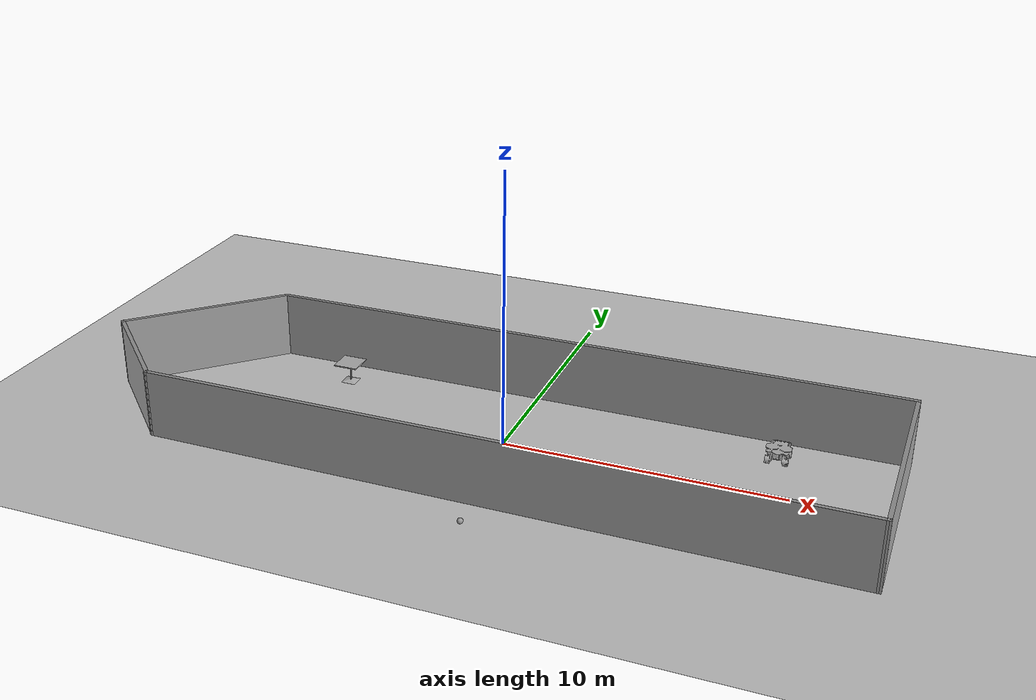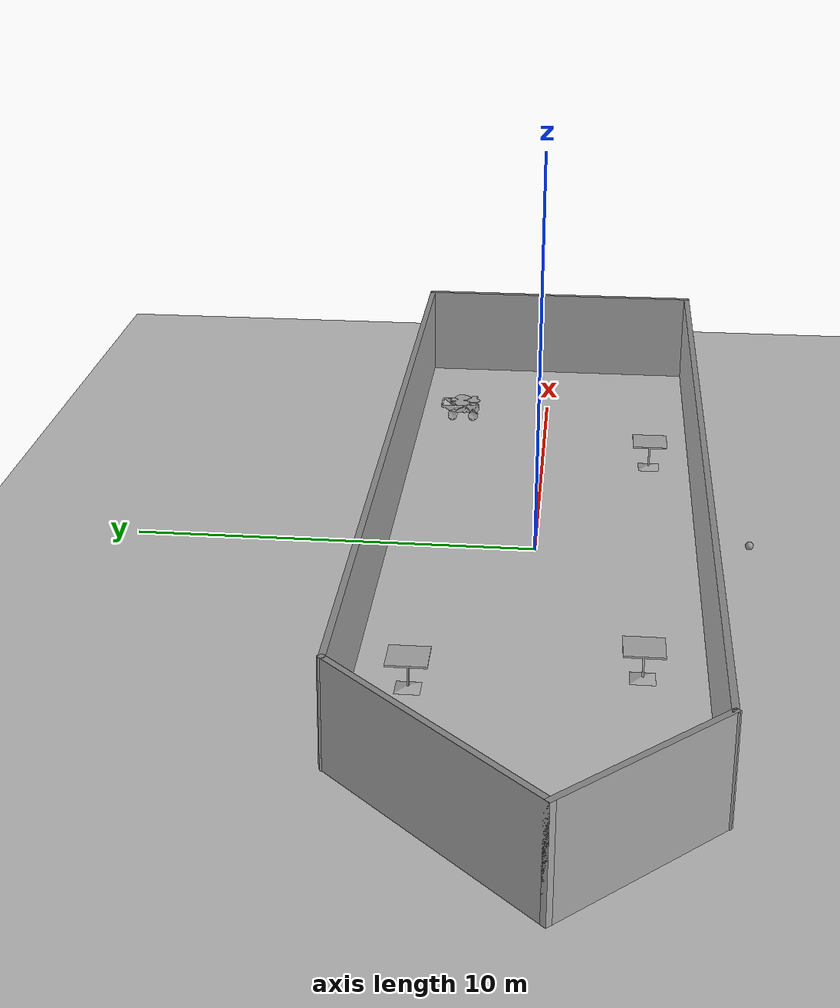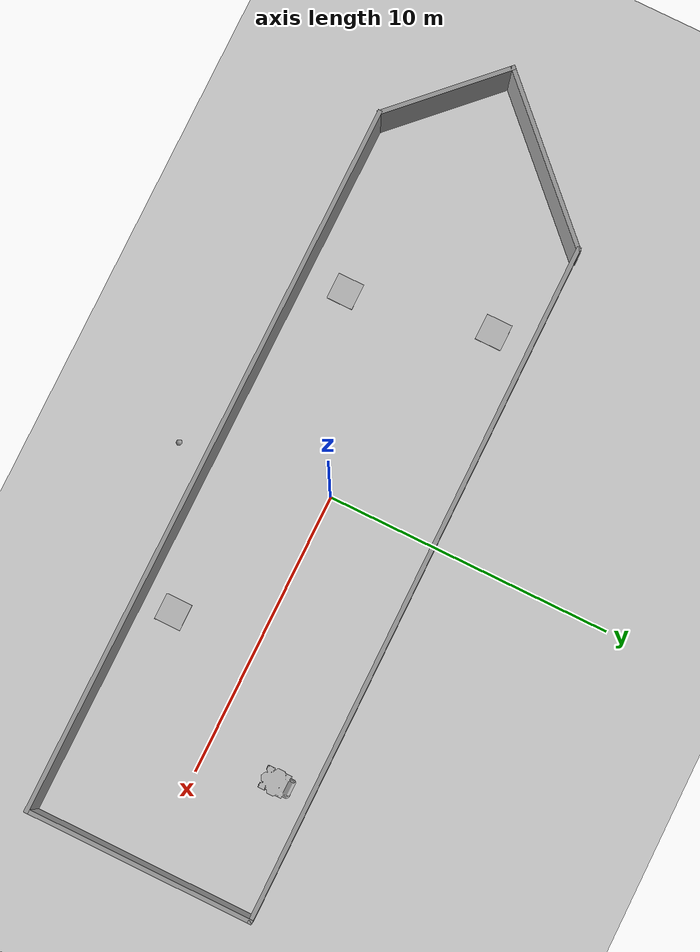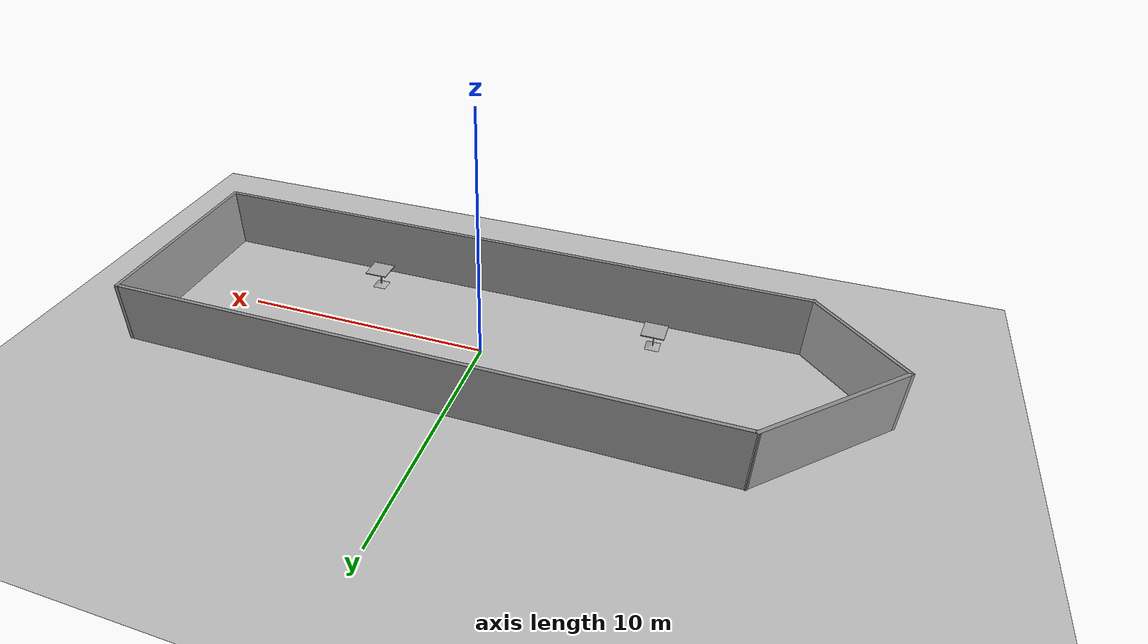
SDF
<sdf version="1.6">
 <world name="default">
  <light name="sun" type="directional">
   <pose>0 0 10 0 -0 0</pose>
   <diffuse>0.8 0.8 0.8 1</diffuse>
   <specular>0.2 0.2 0.2 1</specular>
   <attenuation>
    <range>1000</range>
    <constant>0.9</constant>
    <linear>0.01</linear>
    <quadratic>0.001</quadratic>
   </attenuation>
   <direction>-0.5 0.1 -0.9</direction>
  </light>
  <model name="ground_plane">
   <static>1</static>
   <link name="link">
    <collision name="collision">
     <geometry><plane><normal>0 0 1</normal><size>100 100</size></plane></geometry>
     <surface>
      <contact><collide_bitmask>65535</collide_bitmask></contact>
      <friction><ode><mu>100</mu><mu2>50</mu2></ode></friction>
     </surface>
    </collision>
    <visual name="visual">
     <cast_shadows>0</cast_shadows>
     <geometry><plane><normal>0 0 1</normal><size>100 100</size></plane></geometry>
     <material>
      <script><uri>file://media/materials/scripts/gazebo.material</uri><name>Gazebo/Grey</name></script>
     </material>
    </visual>
   </link>
  </model>
  <gravity>0 0 -9.8</gravity>
  <magnetic_field>6e-06 2.3e-05 -4.2e-05</magnetic_field>
  <atmosphere type="adiabatic"/>
  <physics name="default_physics" default="0" type="ode">
   <max_step_size>0.001</max_step_size>
   <real_time_factor>1</real_time_factor>
   <real_time_update_rate>1000</real_time_update_rate>
  </physics>
  <scene><ambient>0.4 0.4 0.4 1</ambient><background>0.7 0.7 0.7 1</background><shadows>1</shadows></scene>
  <spherical_coordinates>
   <surface_model>EARTH_WGS84</surface_model>
   <latitude_deg>0</latitude_deg>
   <longitude_deg>0</longitude_deg>
   <elevation>0</elevation>
   <heading_deg>0</heading_deg>
  </spherical_coordinates>
  <model name="PentaBuilding">
   <pose>-0.8383 -0.162945 0 0 -0 0</pose>
   <link name="Wall_19">
    <collision name="Wall_19_Collision">
     <geometry><box><size>8 0.15 2.5</size></box></geometry>
     <pose>0 0 1.25 0 -0 0</pose>
    </collision>
    <visual name="Wall_19_Visual">
     <pose>0 0 1.25 0 -0 0</pose>
     <geometry><box><size>8 0.15 2.5</size></box></geometry>
     <material>
      <script><uri>file://media/materials/scripts/gazebo.material</uri><name>Gazebo/Grey</name></script>
      <ambient>1 1 1 1</ambient>
     </material>
     <meta><layer>0</layer></meta>
    </visual>
    <pose>14.1854 -0.015375 0 0 -0 1.5708</pose>
   </link>
   <link name="Wall_20">
    <collision name="Wall_20_Collision">
     <geometry><box><size>24 0.15 2.5</size></box></geometry>
     <pose>0 0 1.25 0 -0 0</pose>
    </collision>
    <visual name="Wall_20_Visual">
     <pose>0 0 1.25 0 -0 0</pose>
     <geometry><box><size>24 0.15 2.5</size></box></geometry>
     <material>
      <script><uri>file://media/materials/scripts/gazebo.material</uri><name>Gazebo/Grey</name></script>
      <ambient>1 1 1 1</ambient>
     </material>
     <meta><layer>0</layer></meta>
    </visual>
    <pose>2.26044 3.90963 0 0 -0 3.14159</pose>
   </link>
   <link name="Wall_21">
    <collision name="Wall_21_Collision">
     <geometry><box><size>6.5 0.15 2.5</size></box></geometry>
     <pose>0 0 1.25 0 -0 0</pose>
    </collision>
    <visual name="Wall_21_Visual">
     <pose>0 0 1.25 0 -0 0</pose>
     <geometry><box><size>6.5 0.15 2.5</size></box></geometry>
     <material>
      <script><uri>file://media/materials/scripts/gazebo.material</uri><name>Gazebo/Grey</name></script>
      <ambient>1 1 1 1</ambient>
     </material>
     <meta><layer>0</layer></meta>
    </visual>
    <pose>-11.9096 1.66456 0 0 -0 -2.35619</pose>
   </link>
   <link name="Wall_22">
    <collision name="Wall_22_Collision">
     <geometry><box><size>4.75 0.15 2.5</size></box></geometry>
     <pose>0 0 1.25 0 -0 0</pose>
    </collision>
    <visual name="Wall_22_Visual">
     <pose>0 0 1.25 0 -0 0</pose>
     <geometry><box><size>4.75 0.15 2.5</size></box></geometry>
     <material>
      <script><uri>file://media/materials/scripts/gazebo.material</uri><name>Gazebo/Grey</name></script>
      <ambient>1 1 1 1</ambient>
     </material>
     <meta><layer>0</layer></meta>
    </visual>
    <pose>-12.5283 -2.20685 0 0 -0 -0.785398</pose>
   </link>
   <link name="Wall_23">
    <collision name="Wall_23_Collision">
     <geometry><box><size>25.2377 0.15 2.5</size></box></geometry>
     <pose>0 0 1.25 0 -0 0</pose>
    </collision>
    <visual name="Wall_23_Visual">
     <pose>0 0 1.25 0 -0 0</pose>
     <geometry><box><size>25.2377 0.15 2.5</size></box></geometry>
     <material>
      <script><uri>file://media/materials/scripts/gazebo.material</uri><name>Gazebo/Grey</name></script>
      <ambient>1 1 1 1</ambient>
     </material>
     <meta><layer>0</layer></meta>
    </visual>
    <pose>1.64172 -3.88678 0 0 -0 -0.004272</pose>
   </link>
   <static>1</static>
  </model>
  <model name="cafe_table">
   <static>1</static>
   <link name="link">
    <collision name="surface">
     <pose>0 0 0.755 0 -0 0</pose>
     <geometry><box><size>0.913 0.913 0.04</size></box></geometry>
    </collision>
    <collision name="column">
     <pose>0 0 0.37 0 -0 0</pose>
     <geometry><box><size>0.042 0.042 0.74</size></box></geometry>
    </collision>
    <collision name="base">
     <pose>0 0 0.02 0 -0 0</pose>
     <geometry><box><size>0.56 0.56 0.04</size></box></geometry>
    </collision>
    <visual name="visual">
     <geometry><mesh><uri>model://cafe_table/meshes/cafe_table.dae</uri></mesh></geometry>
    </visual>
   </link>
   <pose>5.67237 -2.90423 0 0 -0 0</pose>
  </model>
  <model name="cafe_table_0">
   <static>1</static>
   <link name="link">
    <collision name="surface">
     <pose>0 0 0.755 0 -0 0</pose>
     <geometry><box><size>0.913 0.913 0.04</size></box></geometry>
    </collision>
    <collision name="column">
     <pose>0 0 0.37 0 -0 0</pose>
     <geometry><box><size>0.042 0.042 0.74</size></box></geometry>
    </collision>
    <collision name="base">
     <pose>0 0 0.02 0 -0 0</pose>
     <geometry><box><size>0.56 0.56 0.04</size></box></geometry>
    </collision>
    <visual name="visual">
     <geometry><mesh><uri>model://cafe_table/meshes/cafe_table.dae</uri></mesh></geometry>
    </visual>
   </link>
   <pose>-7.16126 2.43375 0 0 -0 0</pose>
  </model>
  <model name="cafe_table_1">
   <static>1</static>
   <link name="link">
    <collision name="surface">
     <pose>0 0 0.755 0 -0 0</pose>
     <geometry><box><size>0.913 0.913 0.04</size></box></geometry>
    </collision>
    <collision name="column">
     <pose>0 0 0.37 0 -0 0</pose>
     <geometry><box><size>0.042 0.042 0.74</size></box></geometry>
    </collision>
    <collision name="base">
     <pose>0 0 0.02 0 -0 0</pose>
     <geometry><box><size>0.56 0.56 0.04</size></box></geometry>
    </collision>
    <visual name="visual">
     <geometry><mesh><uri>model://cafe_table/meshes/cafe_table.dae</uri></mesh></geometry>
    </visual>
   </link>
   <pose>-6.24559 -2.53865 0 0 -0 0</pose>
  </model>
  <model name="mars_rover">
   <static>1</static>
   <link name="link">
    <collision name="solar_panel_collision">
     <pose>0 -0.06945 0.47293 0 -0 0</pose>
     <geometry><box><size>0.87974 0.8821 0.02602</size></box></geometry>
    </collision>
    <collision name="chassis_collision">
     <pose>0 -0.05 0.31475 0 -0 0</pose>
     <geometry><box><size>0.49522 0.67401 0.28915</size></box></geometry>
    </collision>
    <collision name="rear_left_bumper_collision">
     <pose>0.30107 0.3835 0.38976 0 -0 0</pose>
     <geometry><box><size>0.04442 0.38897 0.07918</size></box></geometry>
    </collision>
    <collision name="rear_right_bumper_collision">
     <pose>-0.30107 0.3835 0.38976 0 -0 0</pose>
     <geometry><box><size>0.04442 0.38897 0.07918</size></box></geometry>
    </collision>
    <collision name="rear_bumper_collision">
     <pose>0 0.59414 0.38976 0 -0 0</pose>
     <geometry><box><size>0.56656 0.04442 0.07918</size></box></geometry>
    </collision>
    <collision name="bin_back_panel_collision">
     <pose>0 0.47 0.32114 0.69137 -0 0</pose>
     <geometry><box><size>0.43774 0.212366 0.05173</size></box></geometry>
    </collision>
    <collision name="bin_left_panel_collision1">
     <pose>0.22615 0.32897 0.33193 0 -0 0</pose>
     <geometry><box><size>0.01116 0.19338 0.16304</size></box></geometry>
    </collision>
    <collision name="bin_left_panel_collision2">
     <pose>0.22615 0.471 0.39308 0 -0 0</pose>
     <geometry><box><size>0.01116 0.15 0.04</size></box></geometry>
    </collision>
    <collision name="bin_left_panel_collision3">
     <pose>0.22615 0.45 0.35308 0 -0 0</pose>
     <geometry><box><size>0.01116 0.15 0.04</size></box></geometry>
    </collision>
    <collision name="bin_left_panel_collision4">
     <pose>0.22615 0.39308 0.31308 0 -0 0</pose>
     <geometry><box><size>0.01116 0.15 0.04</size></box></geometry>
    </collision>
    <collision name="bin_right_panel_collision1">
     <pose>-0.22615 0.32897 0.33193 0 -0 0</pose>
     <geometry><box><size>0.01116 0.19338 0.16304</size></box></geometry>
    </collision>
    <collision name="bin_right_panel_collision2">
     <pose>-0.22615 0.471 0.39308 0 -0 0</pose>
     <geometry><box><size>0.01116 0.15 0.04</size></box></geometry>
    </collision>
    <collision name="bin_right_panel_collision3">
     <pose>-0.22615 0.45 0.35308 0 -0 0</pose>
     <geometry><box><size>0.01116 0.15 0.04</size></box></geometry>
    </collision>
    <collision name="bin_right_panel_collision4">
     <pose>-0.22615 0.39308 0.31308 0 -0 0</pose>
     <geometry><box><size>0.01116 0.15 0.04</size></box></geometry>
    </collision>
    <collision name="bin_front_panel_collision">
     <pose>0 0.30047 0.32114 2.26207 -0 0</pose>
     <geometry><box><size>0.43774 0.212366 0.05173</size></box></geometry>
    </collision>
    <collision name="front_left_wheel_collision">
     <pose>0.31103 -0.32115 0.1358 1.5707 0 1.5707</pose>
     <geometry><cylinder><radius>0.1358</radius><length>0.1641</length></cylinder></geometry>
    </collision>
    <collision name="front_right_wheel_collision">
     <pose>-0.31103 -0.32115 0.1358 1.5707 0 1.5707</pose>
     <geometry><cylinder><radius>0.1358</radius><length>0.1641</length></cylinder></geometry>
    </collision>
    <collision name="rear_left_wheel_collision">
     <pose>0.31103 0.28049 0.1358 1.5707 0 1.5707</pose>
     <geometry><cylinder><radius>0.1358</radius><length>0.1641</length></cylinder></geometry>
    </collision>
    <collision name="rear_right_wheel_collision">
     <pose>-0.31103 0.28049 0.1358 1.5707 0 1.5707</pose>
     <geometry><cylinder><radius>0.1358</radius><length>0.1641</length></cylinder></geometry>
    </collision>
    <visual name="visual">
     <geometry><mesh><uri>model://mars_rover/meshes/rover.dae</uri></mesh></geometry>
    </visual>
   </link>
   <pose>9.13297 2.47565 0 0 -0 0</pose>
  </model>
  <model name="my_ball">
   <link name="link_0">
    <inertial>
     <mass>1</mass>
     <inertia><ixx>0.1</ixx><ixy>0</ixy><ixz>0</ixz><iyy>0.1</iyy><iyz>0</iyz><izz>0.1</izz></inertia>
    </inertial>
    <visual name="visual">
     <geometry><sphere><radius>0.1</radius></sphere></geometry>
     <material>
      <lighting>1</lighting>
      <script><uri>file://media/materials/scripts/gazebo.material</uri><name>Gazebo/Grey</name></script>
      <shader type="pixel"><normal_map>__default__</normal_map></shader>
      <ambient>1 1 1 1</ambient>
      <diffuse>1 1 1 1</diffuse>
      <specular>1 1 1 1</specular>
      <emissive>0 0 0 1</emissive>
     </material>
    </visual>
    <collision name="collision">
     <geometry><sphere><radius>0.1</radius></sphere></geometry>
     <surface>
      <friction>
       <ode><mu>1</mu><mu2>1</mu2><fdir1>0 0 0</fdir1><slip1>0</slip1><slip2>0</slip2></ode>
       <torsional>
        <coefficient>1</coefficient>
        <patch_radius>0</patch_radius>
        <surface_radius>0</surface_radius>
        <use_patch_radius>1</use_patch_radius>
        <ode><slip>0</slip></ode>
       </torsional>
      </friction>
      <bounce><restitution_coefficient>0</restitution_coefficient><threshold>1e+06</threshold></bounce>
      <contact>
       <collide_without_contact>0</collide_without_contact>
       <collide_without_contact_bitmask>1</collide_without_contact_bitmask>
       <collide_bitmask>1</collide_bitmask>
       <ode>
        <soft_cfm>0</soft_cfm>
        <soft_erp>0.2</soft_erp>
        <kp>1e+13</kp>
        <kd>1</kd>
        <max_vel>0.01</max_vel>
        <min_depth>0</min_depth>
       </ode>
       <bullet>
        <split_impulse>1</split_impulse>
        <split_impulse_penetration_threshold>-0.01</split_impulse_penetration_threshold>
        <soft_cfm>0</soft_cfm>
        <soft_erp>0.2</soft_erp>
        <kp>1e+13</kp>
        <kd>1</kd>
       </bullet>
      </contact>
     </surface>
    </collision>
   </link>
   <static>0</static>
   <pose>0.578929 -5.28012 0.1 0 -0 0</pose>
  </model>
 </world>
</sdf>
